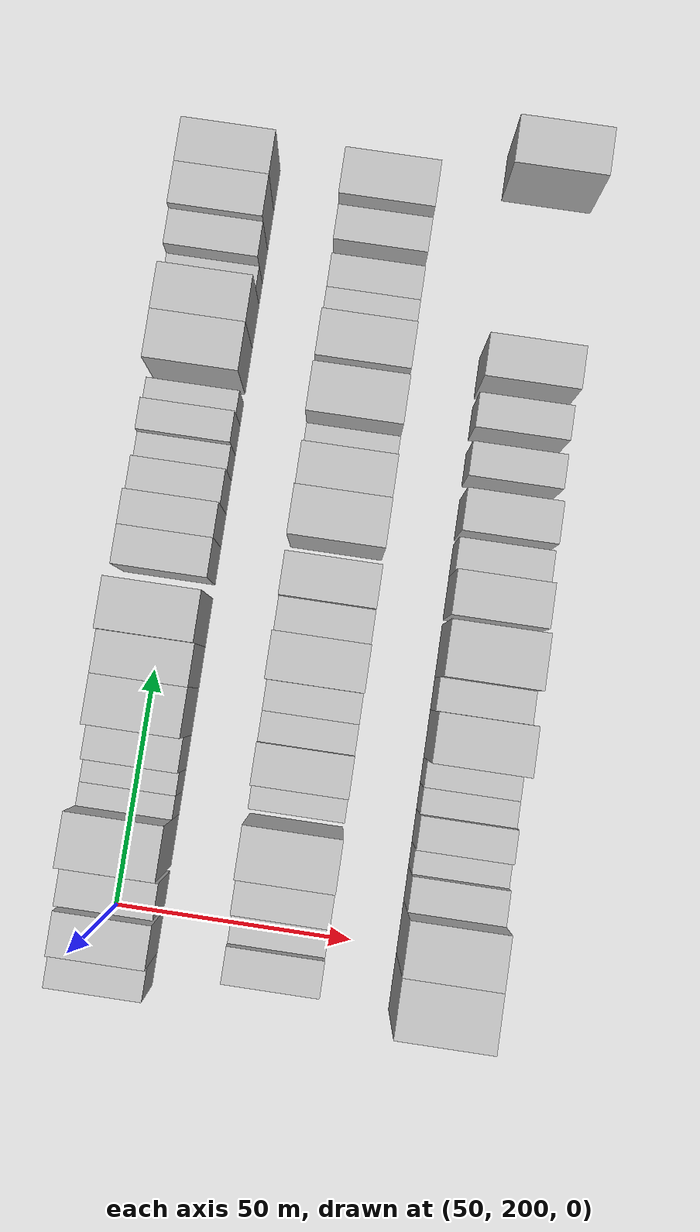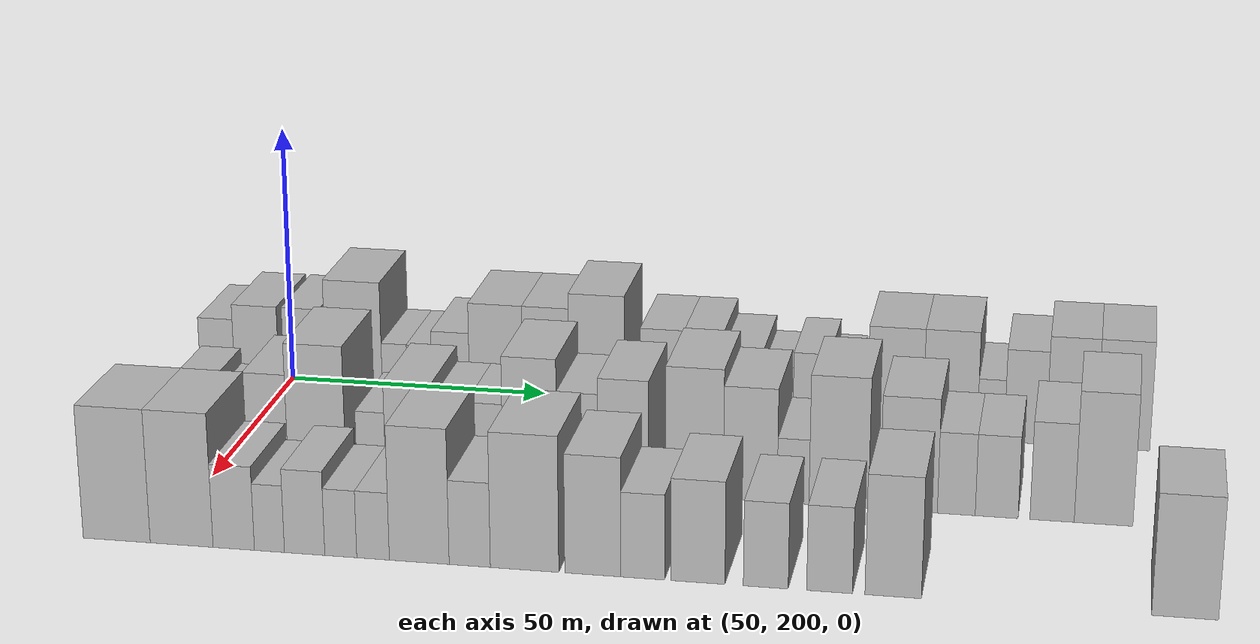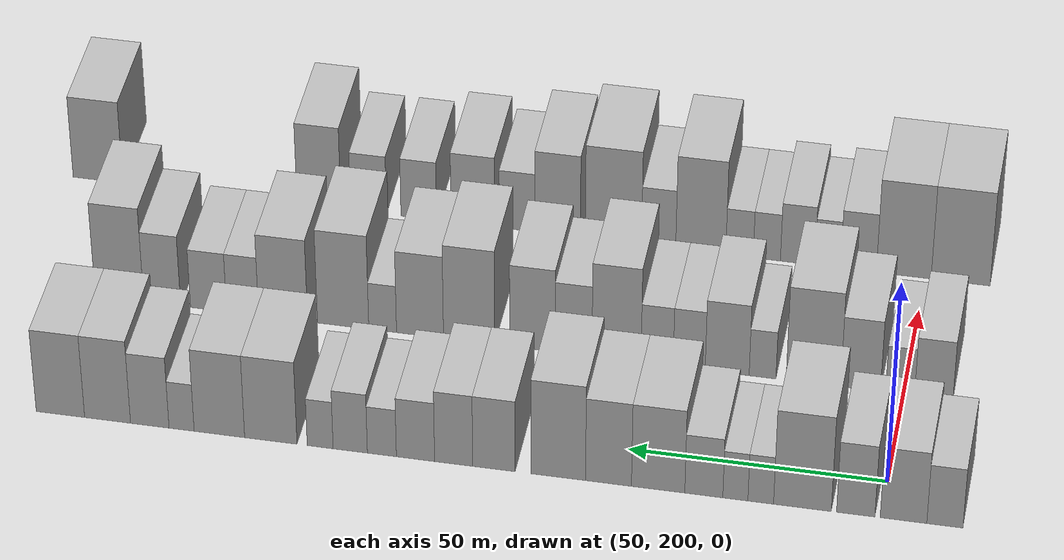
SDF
<sdf version="1.6">
 <world name="default">
  <model name="building_59">
   <static>1</static>
   <pose>50.0000 187.9920 0 0.000000 0.000000 0.000000</pose>
   <link name="link">
    <pose>0 0 7.50 0 0 0</pose>
    <collision name="collision"><geometry><box><size>20.0000 6.8383 15.0000</size></box></geometry></collision>
    <visual name="visual">
     <cast_shadows>0</cast_shadows>
     <geometry><box><size>20.0000 6.8383 15.0000</size></box></geometry>
     <material>
      <script>
       <uri>model://HANNAS_wall/materials/scripts</uri>
       <uri>model://HANNAS_wall/materials/textures</uri>
       <name>vrc/HANNAS_wall</name>
      </script>
     </material>
    </visual>
   </link>
  </model>
  <model name="building_60">
   <static>1</static>
   <pose>50.0000 195.8295 0 0.000000 0.000000 0.000000</pose>
   <link name="link">
    <pose>0 0 9.00 0 0 0</pose>
    <collision name="collision"><geometry><box><size>20.0000 8.8369 18.0000</size></box></geometry></collision>
    <visual name="visual">
     <cast_shadows>0</cast_shadows>
     <geometry><box><size>20.0000 8.8369 18.0000</size></box></geometry>
     <material>
      <script>
       <uri>model://HANNAS_wall/materials/scripts</uri>
       <uri>model://HANNAS_wall/materials/textures</uri>
       <name>vrc/HANNAS_wall</name>
      </script>
     </material>
    </visual>
   </link>
  </model>
  <model name="building_61">
   <static>1</static>
   <pose>50.0000 204.8910 0 0.000000 0.000000 0.000000</pose>
   <link name="link">
    <pose>0 0 9.00 0 0 0</pose>
    <collision name="collision"><geometry><box><size>20.0000 7.2860 18.0000</size></box></geometry></collision>
    <visual name="visual">
     <cast_shadows>0</cast_shadows>
     <geometry><box><size>20.0000 7.2860 18.0000</size></box></geometry>
     <material>
      <script>
       <uri>model://HANNAS_wall/materials/scripts</uri>
       <uri>model://HANNAS_wall/materials/textures</uri>
       <name>vrc/HANNAS_wall</name>
      </script>
     </material>
    </visual>
   </link>
  </model>
  <model name="building_62">
   <static>1</static>
   <pose>50.0000 215.0394 0 0.000000 0.000000 0.000000</pose>
   <link name="link">
    <pose>0 0 12.00 0 0 0</pose>
    <collision name="collision"><geometry><box><size>20.0000 11.0108 24.0000</size></box></geometry></collision>
    <visual name="visual">
     <cast_shadows>0</cast_shadows>
     <geometry><box><size>20.0000 11.0108 24.0000</size></box></geometry>
     <material>
      <script>
       <uri>model://HANNAS_wall/materials/scripts</uri>
       <uri>model://HANNAS_wall/materials/textures</uri>
       <name>vrc/HANNAS_wall</name>
      </script>
     </material>
    </visual>
   </link>
  </model>
  <model name="building_63">
   <static>1</static>
   <pose>50.0000 222.9950 0 0.000000 0.000000 0.000000</pose>
   <link name="link">
    <pose>0 0 6.00 0 0 0</pose>
    <collision name="collision"><geometry><box><size>20.0000 4.9003 12.0000</size></box></geometry></collision>
    <visual name="visual">
     <cast_shadows>0</cast_shadows>
     <geometry><box><size>20.0000 4.9003 12.0000</size></box></geometry>
     <material>
      <script>
       <uri>model://HANNAS_wall/materials/scripts</uri>
       <uri>model://HANNAS_wall/materials/textures</uri>
       <name>vrc/HANNAS_wall</name>
      </script>
     </material>
    </visual>
   </link>
  </model>
  <model name="building_64">
   <static>1</static>
   <pose>50.0000 227.8455 0 0.000000 0.000000 0.000000</pose>
   <link name="link">
    <pose>0 0 6.00 0 0 0</pose>
    <collision name="collision"><geometry><box><size>20.0000 4.8007 12.0000</size></box></geometry></collision>
    <visual name="visual">
     <cast_shadows>0</cast_shadows>
     <geometry><box><size>20.0000 4.8007 12.0000</size></box></geometry>
     <material>
      <script>
       <uri>model://HANNAS_wall/materials/scripts</uri>
       <uri>model://HANNAS_wall/materials/textures</uri>
       <name>vrc/HANNAS_wall</name>
      </script>
     </material>
    </visual>
   </link>
  </model>
  <model name="building_65">
   <static>1</static>
   <pose>50.0000 233.8890 0 0.000000 0.000000 0.000000</pose>
   <link name="link">
    <pose>0 0 7.50 0 0 0</pose>
    <collision name="collision"><geometry><box><size>20.0000 7.2863 15.0000</size></box></geometry></collision>
    <visual name="visual">
     <cast_shadows>0</cast_shadows>
     <geometry><box><size>20.0000 7.2863 15.0000</size></box></geometry>
     <material>
      <script>
       <uri>model://HANNAS_wall/materials/scripts</uri>
       <uri>model://HANNAS_wall/materials/textures</uri>
       <name>vrc/HANNAS_wall</name>
      </script>
     </material>
    </visual>
   </link>
  </model>
  <model name="building_66">
   <static>1</static>
   <pose>50.0000 242.6615 0 0.000000 0.000000 0.000000</pose>
   <link name="link">
    <pose>0 0 10.50 0 0 0</pose>
    <collision name="collision"><geometry><box><size>20.0000 10.2587 21.0000</size></box></geometry></collision>
    <visual name="visual">
     <cast_shadows>0</cast_shadows>
     <geometry><box><size>20.0000 10.2587 21.0000</size></box></geometry>
     <material>
      <script>
       <uri>model://HANNAS_wall/materials/scripts</uri>
       <uri>model://HANNAS_wall/materials/textures</uri>
       <name>vrc/HANNAS_wall</name>
      </script>
     </material>
    </visual>
   </link>
  </model>
  <model name="building_67">
   <static>1</static>
   <pose>50.0000 252.2241 0 0.000000 0.000000 0.000000</pose>
   <link name="link">
    <pose>0 0 10.50 0 0 0</pose>
    <collision name="collision"><geometry><box><size>20.0000 8.8666 21.0000</size></box></geometry></collision>
    <visual name="visual">
     <cast_shadows>0</cast_shadows>
     <geometry><box><size>20.0000 8.8666 21.0000</size></box></geometry>
     <material>
      <script>
       <uri>model://HANNAS_wall/materials/scripts</uri>
       <uri>model://HANNAS_wall/materials/textures</uri>
       <name>vrc/HANNAS_wall</name>
      </script>
     </material>
    </visual>
   </link>
  </model>
  <model name="building_68">
   <static>1</static>
   <pose>50.0000 261.9543 0 0.000000 0.000000 0.000000</pose>
   <link name="link">
    <pose>0 0 12.00 0 0 0</pose>
    <collision name="collision"><geometry><box><size>20.0000 10.5939 24.0000</size></box></geometry></collision>
    <visual name="visual">
     <cast_shadows>0</cast_shadows>
     <geometry><box><size>20.0000 10.5939 24.0000</size></box></geometry>
     <material>
      <script>
       <uri>model://HANNAS_wall/materials/scripts</uri>
       <uri>model://HANNAS_wall/materials/textures</uri>
       <name>vrc/HANNAS_wall</name>
      </script>
     </material>
    </visual>
   </link>
  </model>
  <model name="building_69">
   <static>1</static>
   <pose>50.0000 274.3774 0 0.000000 0.000000 0.000000</pose>
   <link name="link">
    <pose>0 0 9.00 0 0 0</pose>
    <collision name="collision"><geometry><box><size>20.0000 8.2523 18.0000</size></box></geometry></collision>
    <visual name="visual">
     <cast_shadows>0</cast_shadows>
     <geometry><box><size>20.0000 8.2523 18.0000</size></box></geometry>
     <material>
      <script>
       <uri>model://HANNAS_wall/materials/scripts</uri>
       <uri>model://HANNAS_wall/materials/textures</uri>
       <name>vrc/HANNAS_wall</name>
      </script>
     </material>
    </visual>
   </link>
  </model>
  <model name="building_70">
   <static>1</static>
   <pose>50.0000 282.2072 0 0.000000 0.000000 0.000000</pose>
   <link name="link">
    <pose>0 0 9.00 0 0 0</pose>
    <collision name="collision"><geometry><box><size>20.0000 7.4074 18.0000</size></box></geometry></collision>
    <visual name="visual">
     <cast_shadows>0</cast_shadows>
     <geometry><box><size>20.0000 7.4074 18.0000</size></box></geometry>
     <material>
      <script>
       <uri>model://HANNAS_wall/materials/scripts</uri>
       <uri>model://HANNAS_wall/materials/textures</uri>
       <name>vrc/HANNAS_wall</name>
      </script>
     </material>
    </visual>
   </link>
  </model>
  <model name="building_71">
   <static>1</static>
   <pose>50.0000 289.6396 0 0.000000 0.000000 0.000000</pose>
   <link name="link">
    <pose>0 0 7.50 0 0 0</pose>
    <collision name="collision"><geometry><box><size>20.0000 7.4573 15.0000</size></box></geometry></collision>
    <visual name="visual">
     <cast_shadows>0</cast_shadows>
     <geometry><box><size>20.0000 7.4573 15.0000</size></box></geometry>
     <material>
      <script>
       <uri>model://HANNAS_wall/materials/scripts</uri>
       <uri>model://HANNAS_wall/materials/textures</uri>
       <name>vrc/HANNAS_wall</name>
      </script>
     </material>
    </visual>
   </link>
  </model>
  <model name="building_72">
   <static>1</static>
   <pose>50.0000 296.2019 0 0.000000 0.000000 0.000000</pose>
   <link name="link">
    <pose>0 0 6.00 0 0 0</pose>
    <collision name="collision"><geometry><box><size>20.0000 5.6674 12.0000</size></box></geometry></collision>
    <visual name="visual">
     <cast_shadows>0</cast_shadows>
     <geometry><box><size>20.0000 5.6674 12.0000</size></box></geometry>
     <material>
      <script>
       <uri>model://HANNAS_wall/materials/scripts</uri>
       <uri>model://HANNAS_wall/materials/textures</uri>
       <name>vrc/HANNAS_wall</name>
      </script>
     </material>
    </visual>
   </link>
  </model>
  <model name="building_73">
   <static>1</static>
   <pose>50.0000 302.3867 0 0.000000 0.000000 0.000000</pose>
   <link name="link">
    <pose>0 0 7.50 0 0 0</pose>
    <collision name="collision"><geometry><box><size>20.0000 6.7023 15.0000</size></box></geometry></collision>
    <visual name="visual">
     <cast_shadows>0</cast_shadows>
     <geometry><box><size>20.0000 6.7023 15.0000</size></box></geometry>
     <material>
      <script>
       <uri>model://HANNAS_wall/materials/scripts</uri>
       <uri>model://HANNAS_wall/materials/textures</uri>
       <name>vrc/HANNAS_wall</name>
      </script>
     </material>
    </visual>
   </link>
  </model>
  <model name="building_74">
   <static>1</static>
   <pose>50.0000 308.2793 0 0.000000 0.000000 0.000000</pose>
   <link name="link">
    <pose>0 0 6.00 0 0 0</pose>
    <collision name="collision"><geometry><box><size>20.0000 5.0828 12.0000</size></box></geometry></collision>
    <visual name="visual">
     <cast_shadows>0</cast_shadows>
     <geometry><box><size>20.0000 5.0828 12.0000</size></box></geometry>
     <material>
      <script>
       <uri>model://HANNAS_wall/materials/scripts</uri>
       <uri>model://HANNAS_wall/materials/textures</uri>
       <name>vrc/HANNAS_wall</name>
      </script>
     </material>
    </visual>
   </link>
  </model>
  <model name="building_75">
   <static>1</static>
   <pose>50.0000 317.9730 0 0.000000 0.000000 0.000000</pose>
   <link name="link">
    <pose>0 0 10.50 0 0 0</pose>
    <collision name="collision"><geometry><box><size>20.0000 10.3047 21.0000</size></box></geometry></collision>
    <visual name="visual">
     <cast_shadows>0</cast_shadows>
     <geometry><box><size>20.0000 10.3047 21.0000</size></box></geometry>
     <material>
      <script>
       <uri>model://HANNAS_wall/materials/scripts</uri>
       <uri>model://HANNAS_wall/materials/textures</uri>
       <name>vrc/HANNAS_wall</name>
      </script>
     </material>
    </visual>
   </link>
  </model>
  <model name="building_76">
   <static>1</static>
   <pose>50.0000 328.1072 0 0.000000 0.000000 0.000000</pose>
   <link name="link">
    <pose>0 0 10.50 0 0 0</pose>
    <collision name="collision"><geometry><box><size>20.0000 9.9636 21.0000</size></box></geometry></collision>
    <visual name="visual">
     <cast_shadows>0</cast_shadows>
     <geometry><box><size>20.0000 9.9636 21.0000</size></box></geometry>
     <material>
      <script>
       <uri>model://HANNAS_wall/materials/scripts</uri>
       <uri>model://HANNAS_wall/materials/textures</uri>
       <name>vrc/HANNAS_wall</name>
      </script>
     </material>
    </visual>
   </link>
  </model>
  <model name="building_77">
   <static>1</static>
   <pose>50.0000 335.5725 0 0.000000 0.000000 0.000000</pose>
   <link name="link">
    <pose>0 0 6.00 0 0 0</pose>
    <collision name="collision"><geometry><box><size>20.0000 4.9671 12.0000</size></box></geometry></collision>
    <visual name="visual">
     <cast_shadows>0</cast_shadows>
     <geometry><box><size>20.0000 4.9671 12.0000</size></box></geometry>
     <material>
      <script>
       <uri>model://HANNAS_wall/materials/scripts</uri>
       <uri>model://HANNAS_wall/materials/textures</uri>
       <name>vrc/HANNAS_wall</name>
      </script>
     </material>
    </visual>
   </link>
  </model>
  <model name="building_78">
   <static>1</static>
   <pose>50.0000 341.8691 0 0.000000 0.000000 0.000000</pose>
   <link name="link">
    <pose>0 0 9.00 0 0 0</pose>
    <collision name="collision"><geometry><box><size>20.0000 7.6261 18.0000</size></box></geometry></collision>
    <visual name="visual">
     <cast_shadows>0</cast_shadows>
     <geometry><box><size>20.0000 7.6261 18.0000</size></box></geometry>
     <material>
      <script>
       <uri>model://HANNAS_wall/materials/scripts</uri>
       <uri>model://HANNAS_wall/materials/textures</uri>
       <name>vrc/HANNAS_wall</name>
      </script>
     </material>
    </visual>
   </link>
  </model>
  <model name="building_79">
   <static>1</static>
   <pose>50.0000 350.2382 0 0.000000 0.000000 0.000000</pose>
   <link name="link">
    <pose>0 0 10.50 0 0 0</pose>
    <collision name="collision"><geometry><box><size>20.0000 9.1122 21.0000</size></box></geometry></collision>
    <visual name="visual">
     <cast_shadows>0</cast_shadows>
     <geometry><box><size>20.0000 9.1122 21.0000</size></box></geometry>
     <material>
      <script>
       <uri>model://HANNAS_wall/materials/scripts</uri>
       <uri>model://HANNAS_wall/materials/textures</uri>
       <name>vrc/HANNAS_wall</name>
      </script>
     </material>
    </visual>
   </link>
  </model>
  <model name="building_80">
   <static>1</static>
   <pose>50.0000 359.6091 0 0.000000 0.000000 0.000000</pose>
   <link name="link">
    <pose>0 0 10.50 0 0 0</pose>
    <collision name="collision"><geometry><box><size>20.0000 9.6297 21.0000</size></box></geometry></collision>
    <visual name="visual">
     <cast_shadows>0</cast_shadows>
     <geometry><box><size>20.0000 9.6297 21.0000</size></box></geometry>
     <material>
      <script>
       <uri>model://HANNAS_wall/materials/scripts</uri>
       <uri>model://HANNAS_wall/materials/textures</uri>
       <name>vrc/HANNAS_wall</name>
      </script>
     </material>
    </visual>
   </link>
  </model>
  <model name="building_143">
   <static>1</static>
   <pose>85.0000 194.1838 0 0.000000 0.000000 0.000000</pose>
   <link name="link">
    <pose>0 0 7.50 0 0 0</pose>
    <collision name="collision"><geometry><box><size>20.0000 7.4789 15.0000</size></box></geometry></collision>
    <visual name="visual">
     <cast_shadows>0</cast_shadows>
     <geometry><box><size>20.0000 7.4789 15.0000</size></box></geometry>
     <material>
      <script>
       <uri>model://HANNAS_wall/materials/scripts</uri>
       <uri>model://HANNAS_wall/materials/textures</uri>
       <name>vrc/HANNAS_wall</name>
      </script>
     </material>
    </visual>
   </link>
  </model>
  <model name="building_144">
   <static>1</static>
   <pose>85.0000 200.7501 0 0.000000 0.000000 0.000000</pose>
   <link name="link">
    <pose>0 0 6.00 0 0 0</pose>
    <collision name="collision"><geometry><box><size>20.0000 5.6537 12.0000</size></box></geometry></collision>
    <visual name="visual">
     <cast_shadows>0</cast_shadows>
     <geometry><box><size>20.0000 5.6537 12.0000</size></box></geometry>
     <material>
      <script>
       <uri>model://HANNAS_wall/materials/scripts</uri>
       <uri>model://HANNAS_wall/materials/textures</uri>
       <name>vrc/HANNAS_wall</name>
      </script>
     </material>
    </visual>
   </link>
  </model>
  <model name="building_145">
   <static>1</static>
   <pose>85.0000 208.4741 0 0.000000 0.000000 0.000000</pose>
   <link name="link">
    <pose>0 0 9.00 0 0 0</pose>
    <collision name="collision"><geometry><box><size>20.0000 7.7942 18.0000</size></box></geometry></collision>
    <visual name="visual">
     <cast_shadows>0</cast_shadows>
     <geometry><box><size>20.0000 7.7942 18.0000</size></box></geometry>
     <material>
      <script>
       <uri>model://HANNAS_wall/materials/scripts</uri>
       <uri>model://HANNAS_wall/materials/textures</uri>
       <name>vrc/HANNAS_wall</name>
      </script>
     </material>
    </visual>
   </link>
  </model>
  <model name="building_146">
   <static>1</static>
   <pose>85.0000 217.7223 0 0.000000 0.000000 0.000000</pose>
   <link name="link">
    <pose>0 0 12.00 0 0 0</pose>
    <collision name="collision"><geometry><box><size>20.0000 10.7023 24.0000</size></box></geometry></collision>
    <visual name="visual">
     <cast_shadows>0</cast_shadows>
     <geometry><box><size>20.0000 10.7023 24.0000</size></box></geometry>
     <material>
      <script>
       <uri>model://HANNAS_wall/materials/scripts</uri>
       <uri>model://HANNAS_wall/materials/textures</uri>
       <name>vrc/HANNAS_wall</name>
      </script>
     </material>
    </visual>
   </link>
  </model>
  <model name="building_147">
   <static>1</static>
   <pose>85.0000 227.7122 0 0.000000 0.000000 0.000000</pose>
   <link name="link">
    <pose>0 0 6.00 0 0 0</pose>
    <collision name="collision"><geometry><box><size>20.0000 5.2774 12.0000</size></box></geometry></collision>
    <visual name="visual">
     <cast_shadows>0</cast_shadows>
     <geometry><box><size>20.0000 5.2774 12.0000</size></box></geometry>
     <material>
      <script>
       <uri>model://HANNAS_wall/materials/scripts</uri>
       <uri>model://HANNAS_wall/materials/textures</uri>
       <name>vrc/HANNAS_wall</name>
      </script>
     </material>
    </visual>
   </link>
  </model>
  <model name="building_148">
   <static>1</static>
   <pose>85.0000 234.6835 0 0.000000 0.000000 0.000000</pose>
   <link name="link">
    <pose>0 0 9.00 0 0 0</pose>
    <collision name="collision"><geometry><box><size>20.0000 8.6652 18.0000</size></box></geometry></collision>
    <visual name="visual">
     <cast_shadows>0</cast_shadows>
     <geometry><box><size>20.0000 8.6652 18.0000</size></box></geometry>
     <material>
      <script>
       <uri>model://HANNAS_wall/materials/scripts</uri>
       <uri>model://HANNAS_wall/materials/textures</uri>
       <name>vrc/HANNAS_wall</name>
      </script>
     </material>
    </visual>
   </link>
  </model>
  <model name="building_149">
   <static>1</static>
   <pose>85.0000 242.1767 0 0.000000 0.000000 0.000000</pose>
   <link name="link">
    <pose>0 0 7.50 0 0 0</pose>
    <collision name="collision"><geometry><box><size>20.0000 6.3211 15.0000</size></box></geometry></collision>
    <visual name="visual">
     <cast_shadows>0</cast_shadows>
     <geometry><box><size>20.0000 6.3211 15.0000</size></box></geometry>
     <material>
      <script>
       <uri>model://HANNAS_wall/materials/scripts</uri>
       <uri>model://HANNAS_wall/materials/textures</uri>
       <name>vrc/HANNAS_wall</name>
      </script>
     </material>
    </visual>
   </link>
  </model>
  <model name="building_150">
   <static>1</static>
   <pose>85.0000 248.5312 0 0.000000 0.000000 0.000000</pose>
   <link name="link">
    <pose>0 0 7.50 0 0 0</pose>
    <collision name="collision"><geometry><box><size>20.0000 6.3879 15.0000</size></box></geometry></collision>
    <visual name="visual">
     <cast_shadows>0</cast_shadows>
     <geometry><box><size>20.0000 6.3879 15.0000</size></box></geometry>
     <material>
      <script>
       <uri>model://HANNAS_wall/materials/scripts</uri>
       <uri>model://HANNAS_wall/materials/textures</uri>
       <name>vrc/HANNAS_wall</name>
      </script>
     </material>
    </visual>
   </link>
  </model>
  <model name="building_151">
   <static>1</static>
   <pose>85.0000 256.5961 0 0.000000 0.000000 0.000000</pose>
   <link name="link">
    <pose>0 0 12.00 0 0 0</pose>
    <collision name="collision"><geometry><box><size>20.0000 9.7419 24.0000</size></box></geometry></collision>
    <visual name="visual">
     <cast_shadows>0</cast_shadows>
     <geometry><box><size>20.0000 9.7419 24.0000</size></box></geometry>
     <material>
      <script>
       <uri>model://HANNAS_wall/materials/scripts</uri>
       <uri>model://HANNAS_wall/materials/textures</uri>
       <name>vrc/HANNAS_wall</name>
      </script>
     </material>
    </visual>
   </link>
  </model>
  <model name="building_152">
   <static>1</static>
   <pose>85.0000 265.1266 0 0.000000 0.000000 0.000000</pose>
   <link name="link">
    <pose>0 0 9.00 0 0 0</pose>
    <collision name="collision"><geometry><box><size>20.0000 7.3191 18.0000</size></box></geometry></collision>
    <visual name="visual">
     <cast_shadows>0</cast_shadows>
     <geometry><box><size>20.0000 7.3191 18.0000</size></box></geometry>
     <material>
      <script>
       <uri>model://HANNAS_wall/materials/scripts</uri>
       <uri>model://HANNAS_wall/materials/textures</uri>
       <name>vrc/HANNAS_wall</name>
      </script>
     </material>
    </visual>
   </link>
  </model>
  <model name="building_153">
   <static>1</static>
   <pose>85.0000 273.3139 0 0.000000 0.000000 0.000000</pose>
   <link name="link">
    <pose>0 0 10.50 0 0 0</pose>
    <collision name="collision"><geometry><box><size>20.0000 9.0555 21.0000</size></box></geometry></collision>
    <visual name="visual">
     <cast_shadows>0</cast_shadows>
     <geometry><box><size>20.0000 9.0555 21.0000</size></box></geometry>
     <material>
      <script>
       <uri>model://HANNAS_wall/materials/scripts</uri>
       <uri>model://HANNAS_wall/materials/textures</uri>
       <name>vrc/HANNAS_wall</name>
      </script>
     </material>
    </visual>
   </link>
  </model>
  <model name="building_154">
   <static>1</static>
   <pose>85.0000 285.9685 0 0.000000 0.000000 0.000000</pose>
   <link name="link">
    <pose>0 0 12.00 0 0 0</pose>
    <collision name="collision"><geometry><box><size>20.0000 10.2536 24.0000</size></box></geometry></collision>
    <visual name="visual">
     <cast_shadows>0</cast_shadows>
     <geometry><box><size>20.0000 10.2536 24.0000</size></box></geometry>
     <material>
      <script>
       <uri>model://HANNAS_wall/materials/scripts</uri>
       <uri>model://HANNAS_wall/materials/textures</uri>
       <name>vrc/HANNAS_wall</name>
      </script>
     </material>
    </visual>
   </link>
  </model>
  <model name="building_155">
   <static>1</static>
   <pose>85.0000 295.8116 0 0.000000 0.000000 0.000000</pose>
   <link name="link">
    <pose>0 0 10.50 0 0 0</pose>
    <collision name="collision"><geometry><box><size>20.0000 9.4326 21.0000</size></box></geometry></collision>
    <visual name="visual">
     <cast_shadows>0</cast_shadows>
     <geometry><box><size>20.0000 9.4326 21.0000</size></box></geometry>
     <material>
      <script>
       <uri>model://HANNAS_wall/materials/scripts</uri>
       <uri>model://HANNAS_wall/materials/textures</uri>
       <name>vrc/HANNAS_wall</name>
      </script>
     </material>
    </visual>
   </link>
  </model>
  <model name="building_156">
   <static>1</static>
   <pose>85.0000 303.3162 0 0.000000 0.000000 0.000000</pose>
   <link name="link">
    <pose>0 0 6.00 0 0 0</pose>
    <collision name="collision"><geometry><box><size>20.0000 5.5767 12.0000</size></box></geometry></collision>
    <visual name="visual">
     <cast_shadows>0</cast_shadows>
     <geometry><box><size>20.0000 5.5767 12.0000</size></box></geometry>
     <material>
      <script>
       <uri>model://HANNAS_wall/materials/scripts</uri>
       <uri>model://HANNAS_wall/materials/textures</uri>
       <name>vrc/HANNAS_wall</name>
      </script>
     </material>
    </visual>
   </link>
  </model>
  <model name="building_157">
   <static>1</static>
   <pose>85.0000 311.2754 0 0.000000 0.000000 0.000000</pose>
   <link name="link">
    <pose>0 0 12.00 0 0 0</pose>
    <collision name="collision"><geometry><box><size>20.0000 10.3415 24.0000</size></box></geometry></collision>
    <visual name="visual">
     <cast_shadows>0</cast_shadows>
     <geometry><box><size>20.0000 10.3415 24.0000</size></box></geometry>
     <material>
      <script>
       <uri>model://HANNAS_wall/materials/scripts</uri>
       <uri>model://HANNAS_wall/materials/textures</uri>
       <name>vrc/HANNAS_wall</name>
      </script>
     </material>
    </visual>
   </link>
  </model>
  <model name="building_158">
   <static>1</static>
   <pose>85.0000 323.4050 0 0.000000 0.000000 0.000000</pose>
   <link name="link">
    <pose>0 0 10.50 0 0 0</pose>
    <collision name="collision"><geometry><box><size>20.0000 9.9177 21.0000</size></box></geometry></collision>
    <visual name="visual">
     <cast_shadows>0</cast_shadows>
     <geometry><box><size>20.0000 9.9177 21.0000</size></box></geometry>
     <material>
      <script>
       <uri>model://HANNAS_wall/materials/scripts</uri>
       <uri>model://HANNAS_wall/materials/textures</uri>
       <name>vrc/HANNAS_wall</name>
      </script>
     </material>
    </visual>
   </link>
  </model>
  <model name="building_159">
   <static>1</static>
   <pose>85.0000 331.6157 0 0.000000 0.000000 0.000000</pose>
   <link name="link">
    <pose>0 0 7.50 0 0 0</pose>
    <collision name="collision"><geometry><box><size>20.0000 6.5037 15.0000</size></box></geometry></collision>
    <visual name="visual">
     <cast_shadows>0</cast_shadows>
     <geometry><box><size>20.0000 6.5037 15.0000</size></box></geometry>
     <material>
      <script>
       <uri>model://HANNAS_wall/materials/scripts</uri>
       <uri>model://HANNAS_wall/materials/textures</uri>
       <name>vrc/HANNAS_wall</name>
      </script>
     </material>
    </visual>
   </link>
  </model>
  <model name="building_160">
   <static>1</static>
   <pose>85.0000 338.5389 0 0.000000 0.000000 0.000000</pose>
   <link name="link">
    <pose>0 0 7.50 0 0 0</pose>
    <collision name="collision"><geometry><box><size>20.0000 7.3428 15.0000</size></box></geometry></collision>
    <visual name="visual">
     <cast_shadows>0</cast_shadows>
     <geometry><box><size>20.0000 7.3428 15.0000</size></box></geometry>
     <material>
      <script>
       <uri>model://HANNAS_wall/materials/scripts</uri>
       <uri>model://HANNAS_wall/materials/textures</uri>
       <name>vrc/HANNAS_wall</name>
      </script>
     </material>
    </visual>
   </link>
  </model>
  <model name="building_161">
   <static>1</static>
   <pose>85.0000 347.9754 0 0.000000 0.000000 0.000000</pose>
   <link name="link">
    <pose>0 0 9.00 0 0 0</pose>
    <collision name="collision"><geometry><box><size>20.0000 7.5301 18.0000</size></box></geometry></collision>
    <visual name="visual">
     <cast_shadows>0</cast_shadows>
     <geometry><box><size>20.0000 7.5301 18.0000</size></box></geometry>
     <material>
      <script>
       <uri>model://HANNAS_wall/materials/scripts</uri>
       <uri>model://HANNAS_wall/materials/textures</uri>
       <name>vrc/HANNAS_wall</name>
      </script>
     </material>
    </visual>
   </link>
  </model>
  <model name="building_162">
   <static>1</static>
   <pose>85.0000 356.6947 0 0.000000 0.000000 0.000000</pose>
   <link name="link">
    <pose>0 0 12.00 0 0 0</pose>
    <collision name="collision"><geometry><box><size>20.0000 9.9086 24.0000</size></box></geometry></collision>
    <visual name="visual">
     <cast_shadows>0</cast_shadows>
     <geometry><box><size>20.0000 9.9086 24.0000</size></box></geometry>
     <material>
      <script>
       <uri>model://HANNAS_wall/materials/scripts</uri>
       <uri>model://HANNAS_wall/materials/textures</uri>
       <name>vrc/HANNAS_wall</name>
      </script>
     </material>
    </visual>
   </link>
  </model>
  <model name="building_219">
   <static>1</static>
   <pose>120.0000 192.8823 0 0.000000 0.000000 0.000000</pose>
   <link name="link">
    <pose>0 0 12.00 0 0 0</pose>
    <collision name="collision"><geometry><box><size>20.0000 11.8144 24.0000</size></box></geometry></collision>
    <visual name="visual">
     <cast_shadows>0</cast_shadows>
     <geometry><box><size>20.0000 11.8144 24.0000</size></box></geometry>
     <material>
      <script>
       <uri>model://HANNAS_wall/materials/scripts</uri>
       <uri>model://HANNAS_wall/materials/textures</uri>
       <name>vrc/HANNAS_wall</name>
      </script>
     </material>
    </visual>
   </link>
  </model>
  <model name="building_220">
   <static>1</static>
   <pose>120.0000 204.2926 0 0.000000 0.000000 0.000000</pose>
   <link name="link">
    <pose>0 0 12.00 0 0 0</pose>
    <collision name="collision"><geometry><box><size>20.0000 11.0062 24.0000</size></box></geometry></collision>
    <visual name="visual">
     <cast_shadows>0</cast_shadows>
     <geometry><box><size>20.0000 11.0062 24.0000</size></box></geometry>
     <material>
      <script>
       <uri>model://HANNAS_wall/materials/scripts</uri>
       <uri>model://HANNAS_wall/materials/textures</uri>
       <name>vrc/HANNAS_wall</name>
      </script>
     </material>
    </visual>
   </link>
  </model>
  <model name="building_221">
   <static>1</static>
   <pose>120.0000 213.3937 0 0.000000 0.000000 0.000000</pose>
   <link name="link">
    <pose>0 0 7.50 0 0 0</pose>
    <collision name="collision"><geometry><box><size>20.0000 7.1960 15.0000</size></box></geometry></collision>
    <visual name="visual">
     <cast_shadows>0</cast_shadows>
     <geometry><box><size>20.0000 7.1960 15.0000</size></box></geometry>
     <material>
      <script>
       <uri>model://HANNAS_wall/materials/scripts</uri>
       <uri>model://HANNAS_wall/materials/textures</uri>
       <name>vrc/HANNAS_wall</name>
      </script>
     </material>
    </visual>
   </link>
  </model>
  <model name="building_222">
   <static>1</static>
   <pose>120.0000 219.5920 0 0.000000 0.000000 0.000000</pose>
   <link name="link">
    <pose>0 0 6.00 0 0 0</pose>
    <collision name="collision"><geometry><box><size>20.0000 5.2007 12.0000</size></box></geometry></collision>
    <visual name="visual">
     <cast_shadows>0</cast_shadows>
     <geometry><box><size>20.0000 5.2007 12.0000</size></box></geometry>
     <material>
      <script>
       <uri>model://HANNAS_wall/materials/scripts</uri>
       <uri>model://HANNAS_wall/materials/textures</uri>
       <name>vrc/HANNAS_wall</name>
      </script>
     </material>
    </visual>
   </link>
  </model>
  <model name="building_223">
   <static>1</static>
   <pose>120.0000 225.6744 0 0.000000 0.000000 0.000000</pose>
   <link name="link">
    <pose>0 0 7.50 0 0 0</pose>
    <collision name="collision"><geometry><box><size>20.0000 6.9641 15.0000</size></box></geometry></collision>
    <visual name="visual">
     <cast_shadows>0</cast_shadows>
     <geometry><box><size>20.0000 6.9641 15.0000</size></box></geometry>
     <material>
      <script>
       <uri>model://HANNAS_wall/materials/scripts</uri>
       <uri>model://HANNAS_wall/materials/textures</uri>
       <name>vrc/HANNAS_wall</name>
      </script>
     </material>
    </visual>
   </link>
  </model>
  <model name="building_224">
   <static>1</static>
   <pose>120.0000 231.9007 0 0.000000 0.000000 0.000000</pose>
   <link name="link">
    <pose>0 0 6.00 0 0 0</pose>
    <collision name="collision"><geometry><box><size>20.0000 5.4885 12.0000</size></box></geometry></collision>
    <visual name="visual">
     <cast_shadows>0</cast_shadows>
     <geometry><box><size>20.0000 5.4885 12.0000</size></box></geometry>
     <material>
      <script>
       <uri>model://HANNAS_wall/materials/scripts</uri>
       <uri>model://HANNAS_wall/materials/textures</uri>
       <name>vrc/HANNAS_wall</name>
      </script>
     </material>
    </visual>
   </link>
  </model>
  <model name="building_225">
   <static>1</static>
   <pose>120.0000 237.4337 0 0.000000 0.000000 0.000000</pose>
   <link name="link">
    <pose>0 0 6.00 0 0 0</pose>
    <collision name="collision"><geometry><box><size>20.0000 5.5775 12.0000</size></box></geometry></collision>
    <visual name="visual">
     <cast_shadows>0</cast_shadows>
     <geometry><box><size>20.0000 5.5775 12.0000</size></box></geometry>
     <material>
      <script>
       <uri>model://HANNAS_wall/materials/scripts</uri>
       <uri>model://HANNAS_wall/materials/textures</uri>
       <name>vrc/HANNAS_wall</name>
      </script>
     </material>
    </visual>
   </link>
  </model>
  <model name="building_226">
   <static>1</static>
   <pose>120.0000 245.3150 0 0.000000 0.000000 0.000000</pose>
   <link name="link">
    <pose>0 0 12.00 0 0 0</pose>
    <collision name="collision"><geometry><box><size>20.0000 10.1852 24.0000</size></box></geometry></collision>
    <visual name="visual">
     <cast_shadows>0</cast_shadows>
     <geometry><box><size>20.0000 10.1852 24.0000</size></box></geometry>
     <material>
      <script>
       <uri>model://HANNAS_wall/materials/scripts</uri>
       <uri>model://HANNAS_wall/materials/textures</uri>
       <name>vrc/HANNAS_wall</name>
      </script>
     </material>
    </visual>
   </link>
  </model>
  <model name="building_227">
   <static>1</static>
   <pose>120.0000 253.8913 0 0.000000 0.000000 0.000000</pose>
   <link name="link">
    <pose>0 0 7.50 0 0 0</pose>
    <collision name="collision"><geometry><box><size>20.0000 6.9675 15.0000</size></box></geometry></collision>
    <visual name="visual">
     <cast_shadows>0</cast_shadows>
     <geometry><box><size>20.0000 6.9675 15.0000</size></box></geometry>
     <material>
      <script>
       <uri>model://HANNAS_wall/materials/scripts</uri>
       <uri>model://HANNAS_wall/materials/textures</uri>
       <name>vrc/HANNAS_wall</name>
      </script>
     </material>
    </visual>
   </link>
  </model>
  <model name="building_228">
   <static>1</static>
   <pose>120.0000 263.1303 0 0.000000 0.000000 0.000000</pose>
   <link name="link">
    <pose>0 0 12.00 0 0 0</pose>
    <collision name="collision"><geometry><box><size>20.0000 11.5104 24.0000</size></box></geometry></collision>
    <visual name="visual">
     <cast_shadows>0</cast_shadows>
     <geometry><box><size>20.0000 11.5104 24.0000</size></box></geometry>
     <material>
      <script>
       <uri>model://HANNAS_wall/materials/scripts</uri>
       <uri>model://HANNAS_wall/materials/textures</uri>
       <name>vrc/HANNAS_wall</name>
      </script>
     </material>
    </visual>
   </link>
  </model>
  <model name="building_229">
   <static>1</static>
   <pose>120.0000 274.5600 0 0.000000 0.000000 0.000000</pose>
   <link name="link">
    <pose>0 0 10.50 0 0 0</pose>
    <collision name="collision"><geometry><box><size>20.0000 9.3492 21.0000</size></box></geometry></collision>
    <visual name="visual">
     <cast_shadows>0</cast_shadows>
     <geometry><box><size>20.0000 9.3492 21.0000</size></box></geometry>
     <material>
      <script>
       <uri>model://HANNAS_wall/materials/scripts</uri>
       <uri>model://HANNAS_wall/materials/textures</uri>
       <name>vrc/HANNAS_wall</name>
      </script>
     </material>
    </visual>
   </link>
  </model>
  <model name="building_230">
   <static>1</static>
   <pose>120.0000 282.8592 0 0.000000 0.000000 0.000000</pose>
   <link name="link">
    <pose>0 0 7.50 0 0 0</pose>
    <collision name="collision"><geometry><box><size>20.0000 7.2491 15.0000</size></box></geometry></collision>
    <visual name="visual">
     <cast_shadows>0</cast_shadows>
     <geometry><box><size>20.0000 7.2491 15.0000</size></box></geometry>
     <material>
      <script>
       <uri>model://HANNAS_wall/materials/scripts</uri>
       <uri>model://HANNAS_wall/materials/textures</uri>
       <name>vrc/HANNAS_wall</name>
      </script>
     </material>
    </visual>
   </link>
  </model>
  <model name="building_231">
   <static>1</static>
   <pose>120.0000 291.9627 0 0.000000 0.000000 0.000000</pose>
   <link name="link">
    <pose>0 0 9.00 0 0 0</pose>
    <collision name="collision"><geometry><box><size>20.0000 8.9580 18.0000</size></box></geometry></collision>
    <visual name="visual">
     <cast_shadows>0</cast_shadows>
     <geometry><box><size>20.0000 8.9580 18.0000</size></box></geometry>
     <material>
      <script>
       <uri>model://HANNAS_wall/materials/scripts</uri>
       <uri>model://HANNAS_wall/materials/textures</uri>
       <name>vrc/HANNAS_wall</name>
      </script>
     </material>
    </visual>
   </link>
  </model>
  <model name="building_232">
   <static>1</static>
   <pose>120.0000 303.1150 0 0.000000 0.000000 0.000000</pose>
   <link name="link">
    <pose>0 0 7.50 0 0 0</pose>
    <collision name="collision"><geometry><box><size>20.0000 7.3466 15.0000</size></box></geometry></collision>
    <visual name="visual">
     <cast_shadows>0</cast_shadows>
     <geometry><box><size>20.0000 7.3466 15.0000</size></box></geometry>
     <material>
      <script>
       <uri>model://HANNAS_wall/materials/scripts</uri>
       <uri>model://HANNAS_wall/materials/textures</uri>
       <name>vrc/HANNAS_wall</name>
      </script>
     </material>
    </visual>
   </link>
  </model>
  <model name="building_233">
   <static>1</static>
   <pose>120.0000 313.5134 0 0.000000 0.000000 0.000000</pose>
   <link name="link">
    <pose>0 0 7.50 0 0 0</pose>
    <collision name="collision"><geometry><box><size>20.0000 7.4503 15.0000</size></box></geometry></collision>
    <visual name="visual">
     <cast_shadows>0</cast_shadows>
     <geometry><box><size>20.0000 7.4503 15.0000</size></box></geometry>
     <material>
      <script>
       <uri>model://HANNAS_wall/materials/scripts</uri>
       <uri>model://HANNAS_wall/materials/textures</uri>
       <name>vrc/HANNAS_wall</name>
      </script>
     </material>
    </visual>
   </link>
  </model>
  <model name="building_234">
   <static>1</static>
   <pose>120.0000 323.7942 0 0.000000 0.000000 0.000000</pose>
   <link name="link">
    <pose>0 0 10.50 0 0 0</pose>
    <collision name="collision"><geometry><box><size>20.0000 9.1112 21.0000</size></box></geometry></collision>
    <visual name="visual">
     <cast_shadows>0</cast_shadows>
     <geometry><box><size>20.0000 9.1112 21.0000</size></box></geometry>
     <material>
      <script>
       <uri>model://HANNAS_wall/materials/scripts</uri>
       <uri>model://HANNAS_wall/materials/textures</uri>
       <name>vrc/HANNAS_wall</name>
      </script>
     </material>
    </visual>
   </link>
  </model>
  <model name="building_235">
   <static>1</static>
   <pose>120.0000 370.0405 0 0.000000 0.000000 0.000000</pose>
   <link name="link">
    <pose>0 0 10.50 0 0 0</pose>
    <collision name="collision"><geometry><box><size>20.0000 10.4605 21.0000</size></box></geometry></collision>
    <visual name="visual">
     <cast_shadows>0</cast_shadows>
     <geometry><box><size>20.0000 10.4605 21.0000</size></box></geometry>
     <material>
      <script>
       <uri>model://HANNAS_wall/materials/scripts</uri>
       <uri>model://HANNAS_wall/materials/textures</uri>
       <name>vrc/HANNAS_wall</name>
      </script>
     </material>
    </visual>
   </link>
  </model>
 </world>
</sdf>
